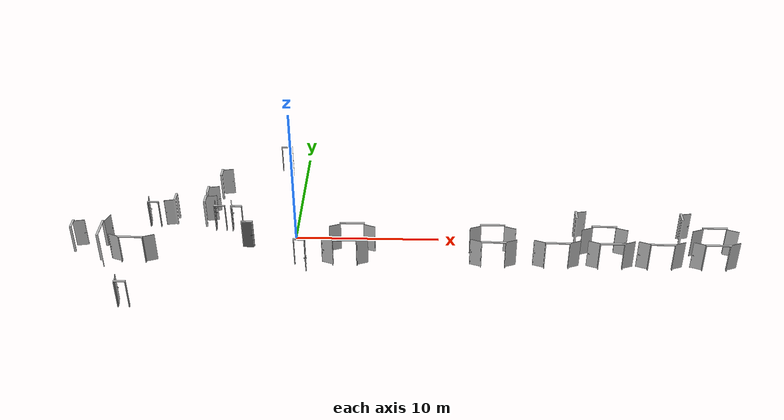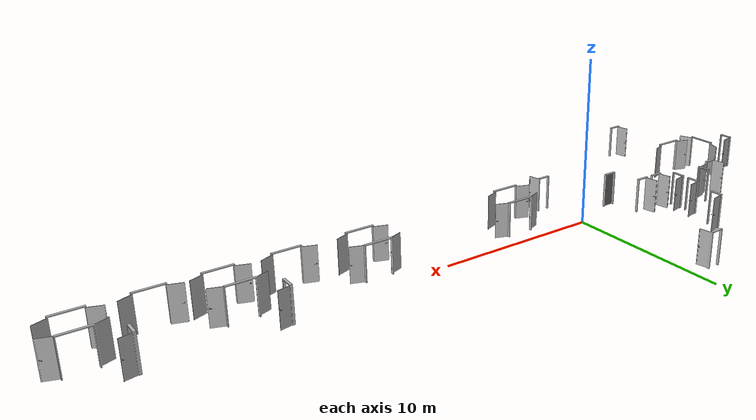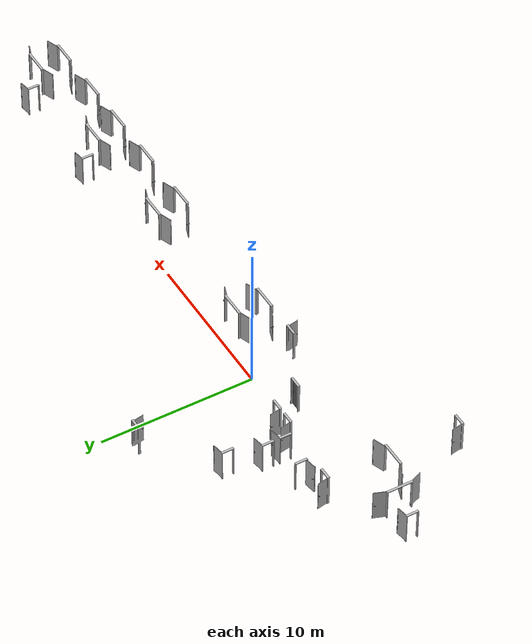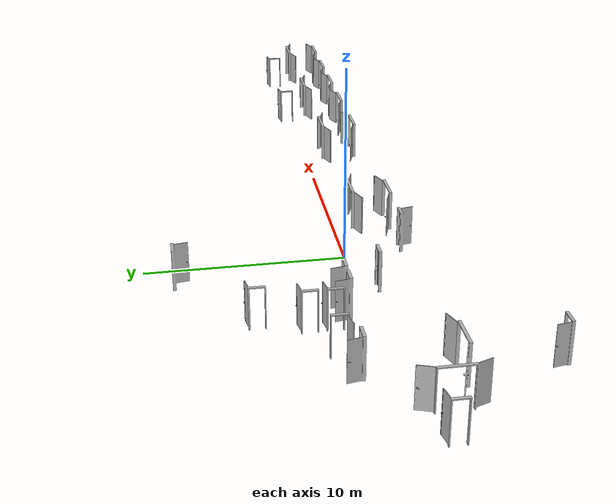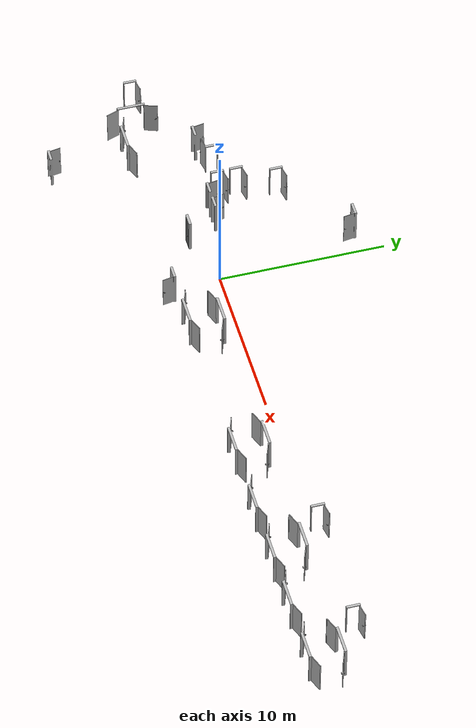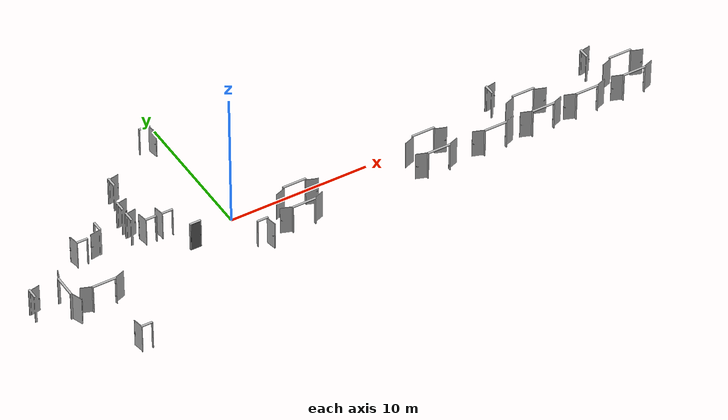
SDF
<sdf version="1.6">
 <world name="default">
  <gravity>0 0 -9.8</gravity>
  <physics default="0" name="default_physics" type="ode">
   <max_step_size>0.001</max_step_size>
   <real_time_factor>1</real_time_factor>
   <real_time_update_rate>1000</real_time_update_rate>
  </physics>
  <model name="door_70_open_13">
   <include><uri>model://models/door_70_open</uri></include>
   <pose>-5.878 5.014 0 0 0 -1.5708</pose>
  </model>
  <model name="door_70_open_04">
   <include><uri>model://models/door_70_open</uri></include>
   <pose>-1.51 8.538 0 0 0 3.14159</pose>
  </model>
  <model name="door_160_fully_open_12">
   <include><uri>model://models/door_160_fully_open</uri></include>
   <pose>4.058 -1.04 0 0 0 3.14159</pose>
  </model>
  <model name="door_160_fully_open_01">
   <include><uri>model://models/door_160_fully_open</uri></include>
   <pose>13.673 -1.04 0 0 0 3.14159</pose>
  </model>
  <model name="door_160_fully_open_02">
   <include><uri>model://models/door_160_fully_open</uri></include>
   <pose>21.273 -1.04 0 0 0 3.14159</pose>
  </model>
  <model name="door_70_open_05">
   <include><uri>model://models/door_70_open</uri></include>
   <pose>19.51 0.3 0 0 0 -1.5708</pose>
  </model>
  <model name="door_160_fully_open_03">
   <include><uri>model://models/door_160_fully_open</uri></include>
   <pose>28.770 -1.04 0 0 0 3.14159</pose>
  </model>
  <model name="door_70_open_06">
   <include><uri>model://models/door_70_open</uri></include>
   <pose>26.76 0.21 0 0 0 -1.5708</pose>
  </model>
  <model name="door_160_fully_open_04">
   <include><uri>model://models/door_160_fully_open</uri></include>
   <pose>28.620 -2.975 0 0 0 0</pose>
  </model>
  <model name="door_160_fully_open_05">
   <include><uri>model://models/door_160_fully_open</uri></include>
   <pose>24.96 -2.975 0 0 0 0</pose>
  </model>
  <model name="door_160_fully_open_06">
   <include><uri>model://models/door_160_fully_open</uri></include>
   <pose>21.601 -2.975 0 0 0 0</pose>
  </model>
  <model name="door_160_fully_open_07">
   <include><uri>model://models/door_160_fully_open</uri></include>
   <pose>17.955 -2.975 0 0 0 0</pose>
  </model>
  <model name="door_160_fully_open_08">
   <include><uri>model://models/door_160_fully_open</uri></include>
   <pose>13.673 -2.975 0 0 0 0</pose>
  </model>
  <model name="door_160_fully_open_09">
   <include><uri>model://models/door_160_fully_open</uri></include>
   <pose>3.63 -2.975 0 0 0 0</pose>
  </model>
  <model name="door_70_open_01">
   <include><uri>model://models/door_70_open</uri></include>
   <pose>0.590 -2.975 0 0 0 3.14159</pose>
  </model>
  <model name="door_160_fully_open_10">
   <include><uri>model://models/door_160_fully_open</uri></include>
   <pose>-10.807 -2.975 0 0 0 0</pose>
  </model>
  <model name="door_70_open_07">
   <include><uri>model://models/door_70_open</uri></include>
   <pose>-10.4 -7.646 0 0 0 0</pose>
  </model>
  <model name="door_160_fully_open_11">
   <include><uri>model://models/door_160_fully_open</uri></include>
   <pose>-13.095 -2.0065 0 0 0 -1.5708</pose>
  </model>
  <model name="door_70_open_08">
   <include><uri>model://models/door_70_open</uri></include>
   <pose>-15.14 -1.55 0 0 0 -1.5708</pose>
  </model>
  <model name="door_70_open_02">
   <include><uri>model://models/door_70_open</uri></include>
   <pose>-8.672 1.82 0 0 0 1.5708</pose>
  </model>
  <model name="door_70_open_09">
   <include><uri>model://models/door_70_open</uri></include>
   <pose>-10.14 1.125 0 0 0 0</pose>
  </model>
  <model name="door_70_open_10">
   <include><uri>model://models/door_70_open</uri></include>
   <pose>-6.53 2.75 0 0 0 -1.5708</pose>
  </model>
  <model name="door_70_open_03">
   <include><uri>model://models/door_70_open</uri></include>
   <pose>-6.53 1.592 0 0 0 -1.5708</pose>
  </model>
  <model name="door_70_open_11">
   <include><uri>model://models/door_70_open</uri></include>
   <pose>-5.39 0.77 0 0 0 0</pose>
  </model>
  <model name="door_70_open_12">
   <include><uri>model://models/door_70_open</uri></include>
   <pose>-4.21 0.77 0 0 0 0</pose>
  </model>
  <model name="door_70_metal_close">
   <include><uri>model://models/door_70_metal_close</uri></include>
   <pose>-3.2 -1.04 0 0 0 0</pose>
  </model>
  <light name="ceiling_light_01" type="point">
   <pose>11 7 3.21824 0 0 0</pose>
   <diffuse>1 1 1 1</diffuse>
   <specular>1 1 1 1</specular>
   <intensity>0.2</intensity>
   <attenuation>
    <range>10</range>
    <constant>0.3</constant>
    <linear>0.01</linear>
    <quadratic>0.001</quadratic>
   </attenuation>
   <direction>0.1 0.1 -1</direction>
  </light>
  <light name="ceiling_light_02" type="point">
   <pose>14 7 3.21824 0 0 0</pose>
   <diffuse>1 1 1 1</diffuse>
   <specular>1 1 1 1</specular>
   <intensity>0.2</intensity>
   <attenuation>
    <range>10</range>
    <constant>0.3</constant>
    <linear>0.01</linear>
    <quadratic>0.001</quadratic>
   </attenuation>
   <direction>0.1 0.1 -1</direction>
  </light>
  <light name="ceiling_light_03" type="point">
   <pose>11 2 3.21824 0 0 0</pose>
   <diffuse>1 1 1 1</diffuse>
   <specular>1 1 1 1</specular>
   <intensity>0.2</intensity>
   <attenuation>
    <range>10</range>
    <constant>0.3</constant>
    <linear>0.01</linear>
    <quadratic>0.001</quadratic>
   </attenuation>
   <direction>0.1 0.1 -1</direction>
  </light>
  <light name="ceiling_light_04" type="point">
   <pose>14 2 3.21824 0 0 0</pose>
   <diffuse>1 1 1 1</diffuse>
   <specular>1 1 1 1</specular>
   <intensity>0.2</intensity>
   <attenuation>
    <range>10</range>
    <constant>0.3</constant>
    <linear>0.01</linear>
    <quadratic>0.001</quadratic>
   </attenuation>
   <direction>0.1 0.1 -1</direction>
  </light>
  <light name="ceiling_light_05" type="point">
   <pose>12.5 -6.2 3.21824 0 0 0</pose>
   <diffuse>1 1 1 1</diffuse>
   <specular>1 1 1 1</specular>
   <intensity>0.6</intensity>
   <attenuation>
    <range>6</range>
    <constant>0.3</constant>
    <linear>0.01</linear>
    <quadratic>0.001</quadratic>
   </attenuation>
   <direction>0.1 0.1 -1</direction>
  </light>
  <light name="ceiling_light_07" type="point">
   <pose>3.2 -4.3 3.21824 0 0 0</pose>
   <diffuse>1 1 1 1</diffuse>
   <specular>1 1 1 1</specular>
   <intensity>0.2</intensity>
   <attenuation>
    <range>9</range>
    <constant>0.3</constant>
    <linear>0.01</linear>
    <quadratic>0.001</quadratic>
   </attenuation>
   <direction>0.1 0.1 -1</direction>
  </light>
  <light name="ceiling_light_08" type="point">
   <pose>3.2 -8.3 3.21824 0 0 0</pose>
   <diffuse>1 1 1 1</diffuse>
   <specular>1 1 1 1</specular>
   <intensity>0.2</intensity>
   <attenuation>
    <range>9</range>
    <constant>0.3</constant>
    <linear>0.01</linear>
    <quadratic>0.001</quadratic>
   </attenuation>
   <direction>0.1 0.1 -1</direction>
  </light>
  <light name="ceiling_light_09" type="point">
   <pose>7.2 -4.3 3.21824 0 0 0</pose>
   <diffuse>1 1 1 1</diffuse>
   <specular>1 1 1 1</specular>
   <intensity>0.2</intensity>
   <attenuation>
    <range>9</range>
    <constant>0.3</constant>
    <linear>0.01</linear>
    <quadratic>0.001</quadratic>
   </attenuation>
   <direction>0.1 0.1 -1</direction>
  </light>
  <light name="ceiling_light_10" type="point">
   <pose>7.2 -8.3 3.21824 0 0 0</pose>
   <diffuse>1 1 1 1</diffuse>
   <specular>1 1 1 1</specular>
   <intensity>0.2</intensity>
   <attenuation>
    <range>9</range>
    <constant>0.3</constant>
    <linear>0.01</linear>
    <quadratic>0.001</quadratic>
   </attenuation>
   <direction>0.1 0.1 -1</direction>
  </light>
  <light name="ceiling_light_25" type="point">
   <pose>-7.8 1.4 3.21824 0 0 0</pose>
   <diffuse>1 1 1 1</diffuse>
   <specular>1 1 1 1</specular>
   <intensity>0.7</intensity>
   <attenuation>
    <range>5.5</range>
    <constant>0.3</constant>
    <linear>0.01</linear>
    <quadratic>0.001</quadratic>
   </attenuation>
   <direction>0.1 0.1 -1</direction>
  </light>
  <light name="ceiling_light_26" type="point">
   <pose>-11 -2 3.21824 0 0 0</pose>
   <diffuse>1 1 1 1</diffuse>
   <specular>1 1 1 1</specular>
   <intensity>0.7</intensity>
   <attenuation>
    <range>4.1</range>
    <constant>0.3</constant>
    <linear>0.01</linear>
    <quadratic>0.001</quadratic>
   </attenuation>
   <direction>0.1 0.1 -1</direction>
  </light>
  <light name="ceiling_light_27" type="point">
   <pose>-2 -2 3.21824 0 0 0</pose>
   <diffuse>1 1 1 1</diffuse>
   <specular>1 1 1 1</specular>
   <intensity>0.7</intensity>
   <attenuation>
    <range>5.7</range>
    <constant>0.3</constant>
    <linear>0.01</linear>
    <quadratic>0.001</quadratic>
   </attenuation>
   <direction>0.1 0.1 -1</direction>
  </light>
  <light name="ceiling_light_28" type="point">
   <pose>8.6 -2 3.21824 0 0 0</pose>
   <diffuse>1 1 1 1</diffuse>
   <specular>1 1 1 1</specular>
   <intensity>0.7</intensity>
   <attenuation>
    <range>8</range>
    <constant>0.3</constant>
    <linear>0.01</linear>
    <quadratic>0.001</quadratic>
   </attenuation>
   <direction>0.1 0.1 -1</direction>
  </light>
  <light name="ceiling_light_29" type="point">
   <pose>20 -2 3.21824 0 0 0</pose>
   <diffuse>1 1 1 1</diffuse>
   <specular>1 1 1 1</specular>
   <intensity>0.7</intensity>
   <attenuation>
    <range>11</range>
    <constant>0.3</constant>
    <linear>0.01</linear>
    <quadratic>0.001</quadratic>
   </attenuation>
   <direction>0.1 0.1 -1</direction>
  </light>
  <light name="ceiling_light_30" type="point">
   <pose>25 -2 3.21824 0 0 0</pose>
   <diffuse>1 1 1 1</diffuse>
   <specular>1 1 1 1</specular>
   <intensity>0.7</intensity>
   <attenuation>
    <range>10</range>
    <constant>0.3</constant>
    <linear>0.01</linear>
    <quadratic>0.001</quadratic>
   </attenuation>
   <direction>0.1 0.1 -1</direction>
  </light>
 </world>
</sdf>

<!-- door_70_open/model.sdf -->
<sdf version="1.6">
  <model name='door_70_open'>
    <static>true</static>
    <link name="body">

        <visual name="visual">
          <geometry>
            <mesh><uri>model://models/door_70_open/meshes/door_70_open.dae</uri></mesh>
          </geometry>
        </visual>

        <collision name="collision">
          <geometry>
            <mesh><uri>model://models/door_70_open/meshes/door_70_open.dae</uri></mesh>
          </geometry>
        </collision>

    </link>
  </model>
</sdf>

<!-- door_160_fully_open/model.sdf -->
<sdf version="1.6">
  <model name='door_160_fully_open'>
    <static>true</static>
    <link name="body">

        <visual name="visual">
          <geometry>
            <mesh><uri>model://models/door_160_fully_open/meshes/door_160_fully_open.dae</uri></mesh>
          </geometry>
        </visual>

        <collision name="collision">
          <geometry>
            <mesh><uri>model://models/door_160_fully_open/meshes/door_160_fully_open.dae</uri></mesh>
          </geometry>
        </collision>

    </link>
  </model>
</sdf>

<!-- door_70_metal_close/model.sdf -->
<sdf version="1.6">
  <model name='door_70_metal_close'>
    <static>true</static>
    <link name="body">

        <visual name="visual">
          <geometry>
            <mesh><uri>model://models/door_70_metal_close/meshes/door_70_metal_close.dae</uri></mesh>
          </geometry>
        </visual>

        <collision name="collision">
          <geometry>
            <mesh><uri>model://models/door_70_metal_close/meshes/door_70_metal_close.dae</uri></mesh>
          </geometry>
        </collision>

    </link>
  </model>
</sdf>
